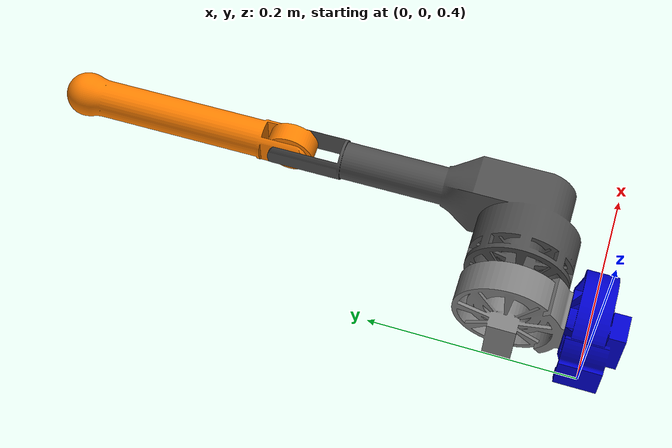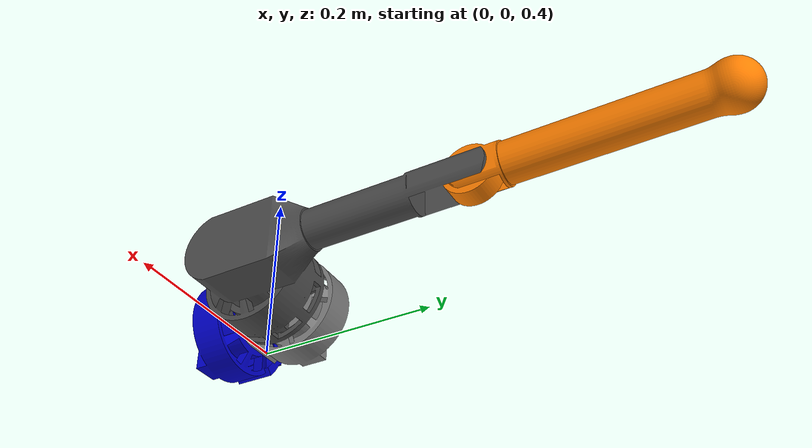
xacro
<?xml version="1.0"?>
<robot xmlns:xacro="http://www.ros.org/wiki/xacro" name="RR">

<!-- Colors -->
<material name="blue">
  <color rgba="0 0 0.8 1"/>
</material>

<material name="red">
  <color rgba="0.8 0 0 1"/>
</material>

<material name="grey">
  <color rgba="0.5 0.5 0.5 1"/>
</material>

<material name="DarkGrey">
  <color rgba="0.3 0.3 0.3 1"/>
</material>

<material name="orange">
  <color rgba="1 0.5 0 1"/>
</material>

<!-- Defining macros -->
<xacro:property name="BaseHeight" value="0.4" />

<!-- Lengths -->
<xacro:property name="LB0" value="0.05555" />
<xacro:property name="L01" value="0.07763" />
<xacro:property name="L12" value="0.11208" />
<xacro:property name="L23" value="0.2531" />
<xacro:property name="L3E" value="0.223" />

<!-- Connectors -->
<xacro:property name="connectorL_1" value="0.004" />
<!-- Hip -->
<xacro:property name="hipW" value="0.045" />
<xacro:property name="hipH" value="0.128" />
<xacro:property name="hipSide" value="0.07" />
<xacro:property name="hip_center_origin_L" value="0.028" />
<!-- Knee -->
<xacro:property name="knee_gearD" value="0.05" />

<!-- leg -->
<xacro:property name="legD" value="0.041" />

<!-- Link3 -->
<xacro:property name="link3_angle_limit" value="2.229" />
<xacro:property name="footD" value="0.045" />

<!-- Actuator -->
<xacro:property name="actuator_nudge" value="0.00666" />
<xacro:property name="actuator_cylinder_width" value="0.03084" />
<xacro:property name="actuator_total_width" value="0.05708" />
<xacro:property name="actuator_diameter" value="0.1031" />

<!-- Generated Quantities -->
<!-- AMOO = "actuator_midplane_origin_offset" -->
<xacro:property name="AMOO" value="${(actuator_total_width-actuator_cylinder_width)/2}" />
<xacro:property name="link1_total_length" value="${-hipW/2 + L12 + actuator_total_width-(actuator_cylinder_width/2+actuator_nudge)}" />
<xacro:property name="link1_total_mid_originL" value="${link1_total_length/2 - ( actuator_total_width - actuator_cylinder_width/2 - actuator_nudge) }" />

<!-- Actuator Limits -->
<xacro:property name="velocity_limit" value="388.4" />

<xacro:property name="maxCurrent" value="13.36" />
<xacro:property name="motorConstantKt" value="0.0754" />
<xacro:property name="effort_limit" value="${maxCurrent*motorConstantKt}" />

<!-- Gear Reductions -->
<xacro:property name="kr1" value="7" />
<xacro:property name="kr2" value="10" />
<xacro:property name="kr3" value="10" />

<!-- Addin objects: -->

<link name="world"/>

<!-- Base Link  -->
<link name="base_link">
  <visual>
    <geometry>
        <mesh scale=".001 .001 .001" filename="package://leg_description/meshes/Base.STL" />
    </geometry>
    <origin rpy="0 0 0" xyz="0 0 0"/>
    <material name="blue"/>
  </visual>
  <collision>
    <geometry>
      <cylinder radius="${actuator_diameter/2+connectorL_1}" length="${actuator_total_width}"/>
    </geometry>
    <origin rpy="0 0 0" xyz="0 0 ${AMOO/2}"/>
  </collision>
  <inertial>
    <mass value="0.4759" />
    <inertia
    ixx="0.000576572"
    ixy="1.091449e-05"
    ixz="-4.096e-06"
    iyy="0.000825053"
    iyz="-3.018e-06"
    izz="0.000391889" />
    <origin rpy="0 0 0" xyz="-0.00083 -0.00061 0.01032" />
  </inertial>
</link>

<joint name="world_joint" type="fixed">
  <parent link="world"/>
  <child link="base_link"/>
  <origin rpy="${pi/2} ${-pi/2} 0" xyz="${LB0} 0 ${BaseHeight}"/>
</joint>

<!-- Link 1  -->
<link name="link1">
  <visual>
    <geometry>
        <mesh scale=".001 .001 .001" filename="package://leg_description/meshes/link1.STL" />
    </geometry>
    <origin rpy="0 0 0" xyz="0 0 0"/>
    <material name="grey"/>
  </visual>
  <collision>
    <geometry>
      <cylinder radius="${actuator_diameter/2+connectorL_1}" length="${link1_total_length}"/>
    </geometry>
    <origin rpy="${pi/2} 0 0" xyz="0  ${-link1_total_mid_originL} 0"/>
  </collision>
  <inertial>
    <mass value="0.4759" />
    <inertia
    ixx="0.000576572"
    ixy="1.091449e-05"
    ixz="-4.096e-06"
    iyy="0.000825053"
    iyz="-3.018e-06"
    izz="0.000391889" />
    <origin rpy="0 0 0" xyz="-0.00083 -0.00061 0.01032" />
  </inertial>
</link>

<joint name="base_to_link1" type="revolute">
  <parent link="base_link"/>
  <child link="link1"/>
  <axis rpy = "0 0 0" xyz="0 0 1"/>
  <limit lower="${-pi/2}" upper="${pi/2}" effort="${effort_limit*kr1}" velocity="${velocity_limit/kr1}" />
  <origin rpy = "0 0 0" xyz="0 0 ${-L01}"/>
</joint>

<transmission name="base_link1_trans">
    <type>transmission_interface/SimpleTransmission</type>
    <actuator name="motor1">
      <mechanicalReduction>${kr1}</mechanicalReduction>
    </actuator>
    <joint name="base_to_link1">
      <hardwareInterface>hardware_interface/EffortJointInterface</hardwareInterface>
    </joint>
</transmission>

<!-- Link 2  -->
<link name="link2">
  <visual>
    <geometry>
        <mesh scale=".001 .001 .001" filename="package://leg_description/meshes/link2.STL" />
    </geometry>
    <origin rpy="0 0 0" xyz="0 0 0"/>
    <material name="DarkGrey"/>
  </visual>
  <collision name="link2_leg">
    <geometry>
      <cylinder radius="${legD/2}" length="${L23}"/>
    </geometry>
    <origin rpy="0 ${pi/2} 0" xyz="${L23/2} 0 0"/>
  </collision>
  <collision name="link2_hip">
    <geometry>
      <box size="${hipH} ${hipSide} ${hipW}" />
    </geometry>
    <origin rpy="0 0 0" xyz="${hip_center_origin_L} 0 0"/>
  </collision>
  <inertial>
    <mass value="0.94987" />
    <inertia
    ixx="0.001561735"
    ixy="-1.2537e-05"
    ixz="-0.000843757"
    iyy="0.005174717"
    iyz="-1.72e-05"
    izz="0.004776989" />
    <origin rpy="0 0 0" xyz="0.03158 -0.00042 -0.02813" />
  </inertial>
</link>

<joint name="link1_to_link2" type="continuous">
  <parent link="link1"/>
  <child link="link2"/>
  <axis rpy = "0 0 0" xyz="0 0 1"/>
  <origin rpy = "${pi/2} ${pi/2} 0" xyz="0 ${-L12}  0"/>
  <limit effort="${effort_limit*kr2}" velocity="${velocity_limit/kr2}" />
</joint>

<transmission name="link1_link2_trans">
    <type>transmission_interface/SimpleTransmission</type>
    <actuator name="motor2">
      <mechanicalReduction>${kr2}</mechanicalReduction>
    </actuator>
    <joint name="link1_to_link2">
      <hardwareInterface>hardware_interface/EffortJointInterface</hardwareInterface>
    </joint>
</transmission>

<!-- Link 3  -->
<link name="link3">
  <visual>
    <geometry>
        <mesh scale=".001 .001 .001" filename="package://leg_description/meshes/link3.STL" />
    </geometry>
    <origin rpy="0 0 0" xyz="0 0 0"/>
    <material name="orange"/>
  </visual>
  <collision name="link3_leg">
    <geometry>
      <cylinder radius="${legD/2}" length="${L3E- (footD/2) }"/>
    </geometry>
    <origin rpy="0 ${pi/2} 0" xyz="${L3E/2  } 0 0"/>
  </collision>
  <collision name="link3_knee">
    <geometry>
      <cylinder radius="${knee_gearD/2}" length="${legD }"/>
    </geometry>
    <origin rpy="0 0 0" xyz="0 0 0"/>
  </collision>
  <collision name="link3_foot">
    <geometry>
      <sphere radius="${footD/2}"/>
    </geometry>
    <origin rpy="0 0 0" xyz="${ L3E } 0 0"/>
  </collision>
  <inertial>
    <mass value="0.36814" />
    <inertia
    ixx="8.8159e-05"
    ixy="0"
    ixz="0"
    iyy="0.003793802"
    iyz="0"
    izz="0.003804351" />
    <origin rpy="0 0 0" xyz="0.10653 0 0" />
  </inertial>
</link>

<joint name="link2_to_link3" type="revolute">
  <parent link="link2"/>
  <child link="link3"/>
  <axis rpy = "0 0 0" xyz="0 0 1"/>
  <origin rpy = "0 0 0" xyz="${L23} 0  0"/>
  <limit lower="${-link3_angle_limit}" upper="${link3_angle_limit}" effort="${effort_limit*kr3}" velocity="${velocity_limit/kr3}" />
</joint>

<transmission name="link2_link3_trans">
    <type>transmission_interface/SimpleTransmission</type>
    <actuator name="motor3">
      <mechanicalReduction>${kr3}</mechanicalReduction>
    </actuator>
    <joint name="link2_to_link3">
      <hardwareInterface>hardware_interface/EffortJointInterface</hardwareInterface>
    </joint>
</transmission>

<!-- Gazebo references -->
<gazebo reference="base_link" >
  <material> Gazebo/Blue </material>
  <kinematic> true </kinematic>
</gazebo>

<gazebo reference="link1" >
  <material> Gazebo/Grey  </material>
</gazebo>

<gazebo reference="link2" >
  <material> Gazebo/DarkGrey  </material>
</gazebo>

<gazebo reference="link3" >
  <material> Gazebo/Orange </material>
  <collision>
    <surface>
      <bounce>
      </bounce>
      <friction>
      <torsional>
        <coefficient> 0 </coefficient>
      </torsional>
        <ode>
          <mu>0.7</mu>
          <mu2>0.7</mu2>
        </ode>
      </friction>
      <contact>
        <ode>
            <kp>1e4</kp>
            <kd>1e2</kd>
            <max_vel>100</max_vel>
        </ode>
      </contact>
    </surface>
  </collision>
  <sensor type="contact" name="wall_contact_sensor">
        <update_rate>1000.0</update_rate>
        <always_on>1</always_on>
        <contact>
          <collision>link3_foot_collision_2</collision>
          <topic>/link3_foot_collision</topic>
        </contact>
        <plugin name="gazebo_ros_bumper_controller" filename="libgazebo_ros_bumper.so">
          <alwaysOn>true</alwaysOn>
          <updateRate>1000.0</updateRate>
          <bumperTopicName>/end_effector_collision</bumperTopicName>
          <frameName>world</frameName>
        </plugin>
      </sensor>

</gazebo>

<gazebo>
<physics type="ode" >
  <ode>
      <solver>
      <type>world</type>
        <friction_model>cone_model</friction_model>

        <!-- Only Important in quick solver -->
      </solver>
  </ode>
  <max_step_size>0.001</max_step_size>
</physics>
</gazebo>

<!-- Gazebo -->
<gazebo>
    <plugin name="gazebo_ros_control" filename="libgazebo_ros_control.so">
      <robotNamespace>/leg</robotNamespace>
    </plugin>
</gazebo>

</robot>
